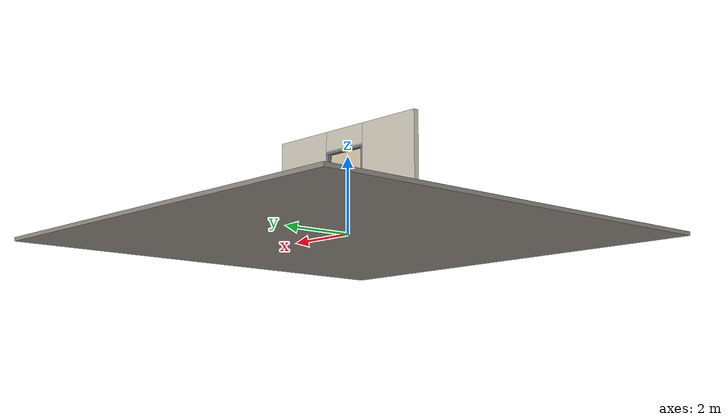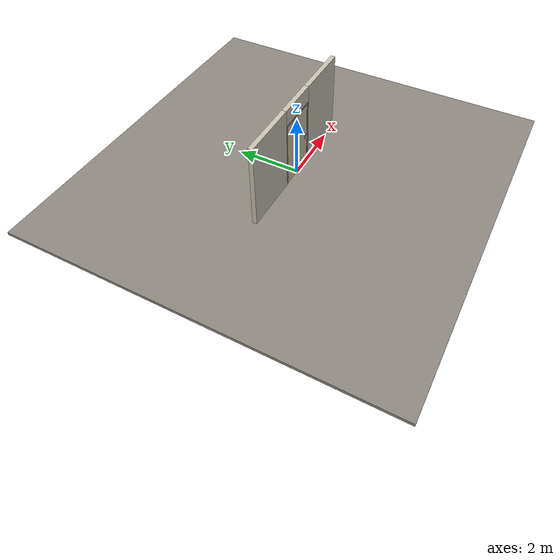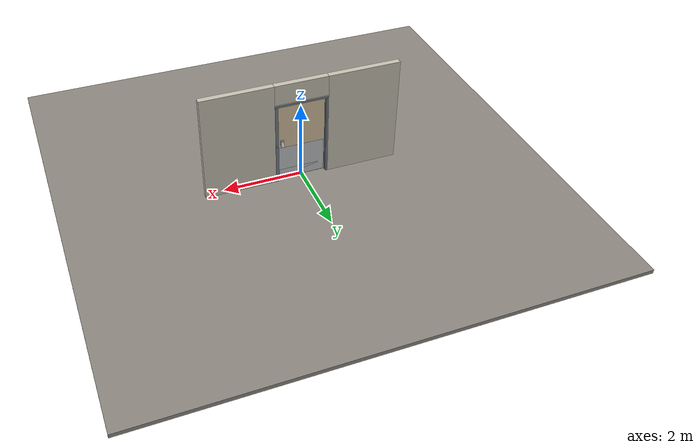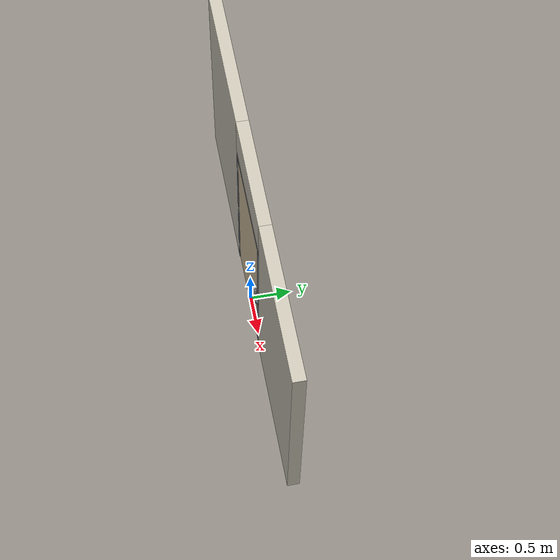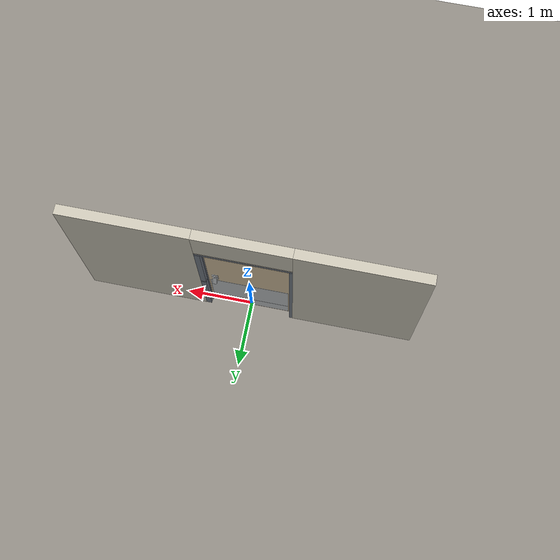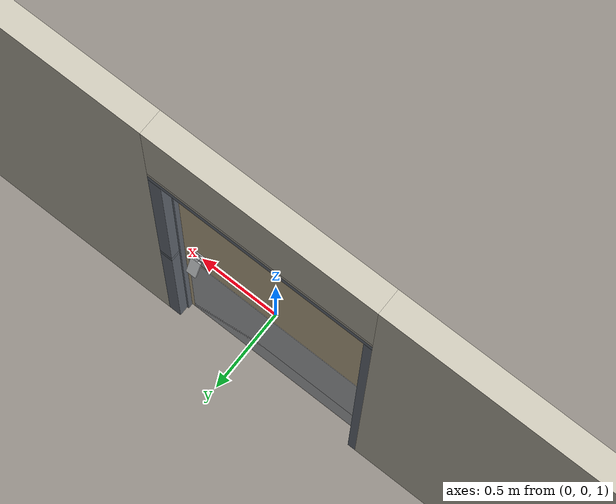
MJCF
<?xml version="1.0" ?>
<mujoco model="db0074_swing_single_simple">
  <compiler angle="radian" meshdir="../../hardware" texturedir="../../textures" autolimits="true" inertiafromgeom="false"/>
  <option timestep="0.002" integrator="implicitfast" cone="elliptic" impratio="10" noslip_iterations="3">
    <flag multiccd="enable"/>
  </option>
  <size memory="16M"/>
  <default>
    <geom condim="4" solref="0.005 1" solimp="0.95 0.99 0.001"/>
    <joint solreflimit="0.005 1" solimplimit="0.95 0.99 0.001"/>
    <tendon solreflimit="0.005 1"/>
    <equality solref="0.002 1"/>
  </default>
  <visual>
    <headlight ambient="0.4 0.4 0.4" diffuse="0.7 0.7 0.7" specular="0.2 0.2 0.2"/>
    <quality shadowsize="4096"/>
    <map znear="0.01" zfar="60"/>
  </visual>
  <asset>
    <mesh name="hinge_e22b26c0c1" file="hinge_e22b26c0c1.obj"/>
    <mesh name="hinge_jamb_e1d088f8dc" file="hinge_jamb_e1d088f8dc.obj"/>
    <material name="mat_floor" rgba="0.55 0.53 0.5 1" specular="0.2" shininess="0.15" reflectance="0"/>
    <material name="mat_wall" rgba="0.78 0.76 0.7 1" specular="0.2" shininess="0.1" reflectance="0"/>
    <material name="mat_leaf" rgba="0.82 0.75 0.62 1" specular="0.2" shininess="0.49" reflectance="0"/>
    <material name="mat_hinge" rgba="0.65 0.66 0.68 1" specular="0.74" shininess="0.5" reflectance="0.36"/>
    <material name="mat_op_stainless" rgba="0.75 0.76 0.77 1" specular="0.8" shininess="0.65" reflectance="0.4"/>
    <material name="mat_bolt" rgba="0.75 0.76 0.77 1" specular="0.8" shininess="0.65" reflectance="0.4"/>
    <material name="mat_frame" rgba="0.45 0.48 0.52 1" specular="0.32" shininess="0.6" reflectance="0.08"/>
    <material name="mat_seal" rgba="0.1 0.1 0.1 1" specular="0.2" shininess="0.1" reflectance="0"/>
    <material name="mat_kick" rgba="0.75 0.76 0.77 1" specular="0.8" shininess="0.65" reflectance="0.4"/>
    <texture name="skybox" type="skybox" builtin="gradient" rgb1="0.6 0.7 0.85" rgb2="0.9 0.92 0.95" width="256" height="256"/>
  </asset>
  <worldbody>
    <light name="sun" pos="1.5 -2.5 4" dir="-0.3 0.5 -0.8" directional="true" diffuse="0.8 0.8 0.8" specular="0.3 0.3 0.3" castshadow="true"/>
    <light name="fill" pos="-1.5 2.5 3" dir="0.3 -0.5 -0.7" directional="true" diffuse="0.35 0.35 0.4" castshadow="false"/>
    <camera name="robot_view" pos="0 -2.594313 1.812087" xyaxes="1 0 0 0 0.26963 0.962964" fovy="52"/>
    <camera name="far_view" pos="0 2.681312 1.812087" xyaxes="-1 0 0 0 -0.26963 0.962964" fovy="52"/>
    <camera name="iso" pos="2.004737 -2.172262 2.234138" xyaxes="0.741536 0.670913 0 -0.242917 0.268487 0.932151" fovy="46"/>
    <camera name="detail_handle" pos="0.677 -0.869521 1.317663" xyaxes="0.97561 0.219512 0 -0.070934 0.315262 0.94635" fovy="38"/>
    <geom name="floor" type="box" size="6 6 0.05" pos="0 0 -0.05" material="mat_floor" group="0" contype="1" conaffinity="1" friction="0.8 0.005 0.0001" density="2400"/>
    <geom name="wall_left" type="box" size="0.9185 0.0725 1.3735" pos="-1.5815 0.0435 1.3735" material="mat_wall" group="0" contype="1" conaffinity="1" friction="0.6 0.005 0.0001" density="800"/>
    <geom name="wall_right" type="box" size="0.9035 0.0725 1.3735" pos="1.5965 0.0435 1.3735" material="mat_wall" group="0" contype="1" conaffinity="1" friction="0.6 0.005 0.0001" density="800"/>
    <geom name="wall_header" type="box" size="0.678 0.0725 0.26" pos="0.015 0.0435 2.487" material="mat_wall" group="0" contype="1" conaffinity="1" friction="0.6 0.005 0.0001" density="800"/>
    <geom name="hinge_0_jamb" type="mesh" mesh="hinge_jamb_e1d088f8dc" pos="-0.61 -0.029 0.259" material="mat_hinge" group="1" contype="0" conaffinity="0" density="7850"/>
    <geom name="hinge_1_jamb" type="mesh" mesh="hinge_jamb_e1d088f8dc" pos="-0.61 -0.029 1.076" material="mat_hinge" group="1" contype="0" conaffinity="0" density="7850"/>
    <geom name="hinge_2_jamb" type="mesh" mesh="hinge_jamb_e1d088f8dc" pos="-0.61 -0.029 1.963" material="mat_hinge" group="1" contype="0" conaffinity="0" density="7850"/>
    <geom name="jamb_hinge" type="box" size="0.025 0.0725 1.0735" pos="-0.638 0.0435 1.0735" material="mat_frame" group="0" contype="1" conaffinity="1" friction="0.6 0.005 0.0001" density="300"/>
    <geom name="strike_1040_wall_n" type="box" size="0.04 0.05325 0.018" pos="0.653 0.06275 1.04" material="mat_frame" group="0" contype="1" conaffinity="1" friction="0.6 0.005 0.0001" density="300"/>
    <geom name="strike_1040_wall_p" type="box" size="0.04 0.008 0.018" pos="0.653 -0.0175 1.04" material="mat_frame" group="0" contype="1" conaffinity="1" friction="0.6 0.005 0.0001" density="300"/>
    <geom name="strike_1040_ramp" type="box" size="0.04 0.018028 0.018" pos="0.656282 -0.018312 1.04" quat="0.957092 0 0 0.289784" material="mat_frame" group="0" contype="1" conaffinity="1" friction="0.12 0.005 0.0001" density="300"/>
    <geom name="strike_1040_back" type="box" size="0.0285 0.0095 0.018" pos="0.6645 0 1.04" material="mat_frame" group="0" contype="1" conaffinity="1" friction="0.6 0.005 0.0001" density="300"/>
    <geom name="jamb_strike_0" type="box" size="0.04 0.0725 0.511" pos="0.653 0.0435 0.511" material="mat_frame" group="0" contype="1" conaffinity="1" friction="0.6 0.005 0.0001" density="300"/>
    <geom name="jamb_strike_1" type="box" size="0.04 0.0725 0.5445" pos="0.653 0.0435 1.6025" material="mat_frame" group="0" contype="1" conaffinity="1" friction="0.6 0.005 0.0001" density="300"/>
    <geom name="jamb_head" type="box" size="0.678 0.0725 0.025" pos="0.015 0.0435 2.172" material="mat_frame" group="0" contype="1" conaffinity="1" friction="0.6 0.005 0.0001" density="300"/>
    <geom name="head_stud" type="box" size="0.678 0.0725 0.015" pos="0.015 0.0435 2.212" material="mat_wall" group="0" contype="1" conaffinity="1" friction="0.6 0.005 0.0001" density="500"/>
    <geom name="stop_hinge" type="box" size="0.0055 0.016 1.0735" pos="-0.6075 0.0385 1.0735" material="mat_frame" group="0" contype="1" conaffinity="1" friction="0.6 0.005 0.0001" density="300"/>
    <geom name="stop_strike" type="box" size="0.0055 0.016 1.0735" pos="0.6075 0.0385 1.0735" material="mat_frame" group="0" contype="1" conaffinity="1" friction="0.6 0.005 0.0001" density="300"/>
    <geom name="stop_head" type="box" size="0.613 0.016 0.0055" pos="0 0.0385 2.1415" material="mat_frame" group="0" contype="1" conaffinity="1" friction="0.6 0.005 0.0001" density="300"/>
    <geom name="seal_hinge" type="box" size="0.004 0.002 1.0735" pos="-0.61 0.024 1.0735" material="mat_seal" group="1" contype="0" conaffinity="0" density="1100"/>
    <geom name="seal_strike" type="box" size="0.004 0.002 1.0735" pos="0.61 0.024 1.0735" material="mat_seal" group="1" contype="0" conaffinity="0" density="1100"/>
    <geom name="seal_head" type="box" size="0.593 0.002 0.008" pos="0 0.024 2.135" material="mat_seal" group="1" contype="0" conaffinity="0" density="1100"/>
    <site name="approach_point" pos="0 -1.5 0" quat="1 0 0 0" size="0.05" rgba="0.2 0.9 0.2 0.5" group="4"/>
    <site name="goal_point" pos="0 1.5 0" quat="1 0 0 0" size="0.05" rgba="0.2 0.9 0.2 0.5" group="4"/>
    <site name="door_plane_center" pos="0 0 1.0735" quat="1 0 0 0" size="0.02" rgba="0.2 0.9 0.2 0.5" group="4"/>
    <body name="leaf" pos="-0.613 0 0">
      <inertial pos="0.611535 0.003557 0.966708" mass="94.837329" quat="0.501288 -0.498274 -0.49902 -0.501411" diaginertia="11.822426848 37.036627312 48.820809651"/>
      <joint name="leaf_hinge" type="hinge" axis="0 0 -1" pos="0.003 -0.029 0" limited="true" range="0 1.570796" solreflimit="0.02 1" damping="0.900995" frictionloss="1.161255" armature="0.02"/>
      <geom name="leaf_slab" type="box" size="0.6095 0.022 1.067" pos="0.6125 0 1.076" material="mat_leaf" group="0" contype="1" conaffinity="1" friction="0.35 0.005 0.0001" density="1"/>
      <geom name="hinge_0" type="mesh" mesh="hinge_e22b26c0c1" pos="0.003 -0.029 0.259" material="mat_hinge" group="1" contype="0" conaffinity="0" density="7850"/>
      <geom name="hinge_1" type="mesh" mesh="hinge_e22b26c0c1" pos="0.003 -0.029 1.076" material="mat_hinge" group="1" contype="0" conaffinity="0" density="7850"/>
      <geom name="hinge_2" type="mesh" mesh="hinge_e22b26c0c1" pos="0.003 -0.029 1.963" material="mat_hinge" group="1" contype="0" conaffinity="0" density="7850"/>
      <geom name="leaf_handle_paddle_backplate_n" type="box" size="0.044 0.003 0.09" pos="1.11 -0.025 1.059895" material="mat_op_stainless" group="0" contype="1" conaffinity="1" friction="0.6 0.005 0.0001" density="3000"/>
      <geom name="leaf_handle_paddle_bearing_n_-1" type="box" size="0.005 0.006 0.009" pos="1.072 -0.034 1.122895" material="mat_op_stainless" group="0" contype="1" conaffinity="1" friction="0.6 0.005 0.0001" density="3000"/>
      <geom name="leaf_handle_paddle_bearing_n_1" type="box" size="0.005 0.006 0.009" pos="1.148 -0.034 1.122895" material="mat_op_stainless" group="0" contype="1" conaffinity="1" friction="0.6 0.005 0.0001" density="3000"/>
      <geom name="leaf_handle_paddle_pin_n" type="cylinder" size="0.004 0.043" pos="1.11 -0.04 1.122895" quat="0.707107 0 0.707107 0" material="mat_op_stainless" group="1" contype="0" conaffinity="0" density="7850"/>
      <geom name="leaf_handle_paddle_backplate_p" type="box" size="0.044 0.003 0.09" pos="1.11 0.025 1.059895" material="mat_op_stainless" group="0" contype="1" conaffinity="1" friction="0.6 0.005 0.0001" density="3000"/>
      <geom name="leaf_handle_paddle_bearing_p_-1" type="box" size="0.005 0.006 0.009" pos="1.072 0.034 1.122895" material="mat_op_stainless" group="0" contype="1" conaffinity="1" friction="0.6 0.005 0.0001" density="3000"/>
      <geom name="leaf_handle_paddle_bearing_p_1" type="box" size="0.005 0.006 0.009" pos="1.148 0.034 1.122895" material="mat_op_stainless" group="0" contype="1" conaffinity="1" friction="0.6 0.005 0.0001" density="3000"/>
      <geom name="leaf_handle_paddle_pin_p" type="cylinder" size="0.004 0.043" pos="1.11 0.04 1.122895" quat="0.707107 0 0.707107 0" material="mat_op_stainless" group="1" contype="0" conaffinity="0" density="7850"/>
      <geom name="leaf_latch_bolt_faceplate" type="box" size="0.0006 0.014 0.028" pos="1.2214 0 1.04" material="mat_bolt" group="1" contype="0" conaffinity="0" density="8500"/>
      <geom name="kick_plate_p" type="box" size="0.5795 0.0008 0.125" pos="0.6125 0.0228 0.144" material="mat_kick" group="2" contype="0" conaffinity="0" density="7900"/>
      <geom name="armor_plate" type="box" size="0.5795 0.0008 0.45" pos="0.6125 0.0228 0.469" material="mat_kick" group="2" contype="0" conaffinity="0" density="7900"/>
      <site name="leaf_edge_mid" pos="1.222 0 1.067" quat="1 0 0 0" size="0.02" rgba="0.2 0.9 0.2 0.5" group="4"/>
      <body name="leaf_handle" pos="1.11 -0.04 1.122895">
        <inertial pos="0 -0.031074 -0.073496" mass="0.333798" quat="-0.390699 0.589368 0.589368 0.390699" diaginertia="0.00010582 0.00062862 0.000726597"/>
        <joint name="leaf_handle_hinge" type="hinge" axis="-1 0 0" limited="true" range="0 0.4" damping="0.27663" frictionloss="0.056" stiffness="1.5" springref="-1" armature="0.01"/>
        <geom name="leaf_handle_paddle_col_n" type="box" size="0.032 0.006 0.063" pos="0 -0.035048 -0.082895" quat="0.980067 -0.198669 0 0" material="mat_op_stainless" group="0" contype="1" conaffinity="1" friction="0.6 0.005 0.0001" density="3000"/>
        <geom name="leaf_handle_paddle_neck_n" type="box" size="0.012 0.004 0.021" pos="0 -0.008178 -0.019342" quat="0.980067 -0.198669 0 0" material="mat_op_stainless" group="0" contype="1" conaffinity="1" friction="0.6 0.005 0.0001" density="3000"/>
        <geom name="leaf_handle_paddle_hub_n" type="cylinder" size="0.008 0.016" pos="0 0 0" quat="0.707107 0 0.707107 0" material="mat_op_stainless" group="1" contype="0" conaffinity="0" density="3000"/>
        <site name="leaf_handle_grip_n" pos="0 -0.029521 -0.085232" quat="0.552531 -0.833492 0 0" size="0.012" rgba="0.2 0.9 0.2 0.5" group="4"/>
      </body>
      <body name="leaf_handle_paddle_follower_p" pos="1.11 0.04 1.122895">
        <inertial pos="0 0.031074 -0.073496" mass="0.333798" quat="0.589368 -0.390699 -0.390699 -0.589368" diaginertia="0.00010582 0.00062862 0.000726597"/>
        <joint name="leaf_handle_paddle_follower_p_hinge" type="hinge" axis="-1 0 0" limited="true" range="0 0.4" armature="0.002"/>
        <geom name="leaf_handle_paddle_col_p" type="box" size="0.032 0.006 0.063" pos="0 0.035048 -0.082895" quat="0.980067 0.198669 0 0" material="mat_op_stainless" group="0" contype="1" conaffinity="1" friction="0.6 0.005 0.0001" density="3000"/>
        <geom name="leaf_handle_paddle_neck_p" type="box" size="0.012 0.004 0.021" pos="0 0.008178 -0.019342" quat="0.980067 0.198669 0 0" material="mat_op_stainless" group="0" contype="1" conaffinity="1" friction="0.6 0.005 0.0001" density="3000"/>
        <geom name="leaf_handle_paddle_hub_p" type="cylinder" size="0.008 0.016" pos="0 0 0" quat="0.707107 0 0.707107 0" material="mat_op_stainless" group="1" contype="0" conaffinity="0" density="3000"/>
        <site name="leaf_handle_grip_p" pos="0 0.040574 -0.080559" quat="0.833492 -0.552531 0 0" size="0.012" rgba="0.2 0.9 0.2 0.5" group="4"/>
      </body>
      <body name="leaf_latch_bolt" pos="1.222 0 1.04">
        <inertial pos="-0.0055 0 0" mass="0.074627" quat="0.92388 -0.382683 0 0" diaginertia="0.000002271 0.000013255 0.000013255"/>
        <joint name="leaf_latch_bolt_slide" type="slide" axis="-1 0 0" limited="true" range="0 0.019" damping="2" frictionloss="0.3" stiffness="550" springref="-0.01" armature="0.1"/>
        <geom name="leaf_latch_bolt_capsule" type="capsule" size="0.008 0.0165" pos="-0.0055 0 0" quat="0.707107 0 0.707107 0" material="mat_bolt" group="0" contype="1" conaffinity="1" friction="0.2 0.005 0.0001" density="8500"/>
      </body>
    </body>
  </worldbody>
  <tendon>
    <fixed name="leaf_latch_bolt_coupling" limited="true" range="0 10">
      <joint joint="leaf_latch_bolt_slide" coef="1"/>
      <joint joint="leaf_handle_hinge" coef="-0.051351"/>
    </fixed>
  </tendon>
  <equality>
    <joint name="leaf_handle_paddle_cam_p" joint1="leaf_handle_paddle_follower_p_hinge" joint2="leaf_handle_hinge" polycoef="0 1 0 0 0" active="true"/>
  </equality>
  <sensor>
    <jointpos name="leaf_hinge_pos" joint="leaf_hinge"/>
    <jointvel name="leaf_hinge_vel" joint="leaf_hinge"/>
    <jointpos name="leaf_handle_hinge_pos" joint="leaf_handle_hinge"/>
    <jointvel name="leaf_handle_hinge_vel" joint="leaf_handle_hinge"/>
    <jointpos name="leaf_latch_bolt_slide_pos" joint="leaf_latch_bolt_slide"/>
    <jointvel name="leaf_latch_bolt_slide_vel" joint="leaf_latch_bolt_slide"/>
  </sensor>
</mujoco>
